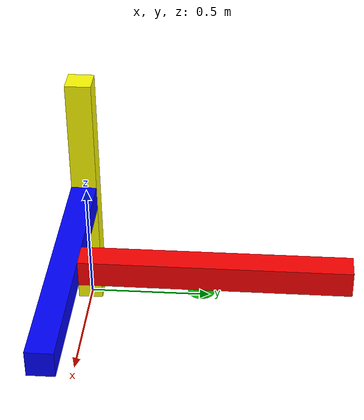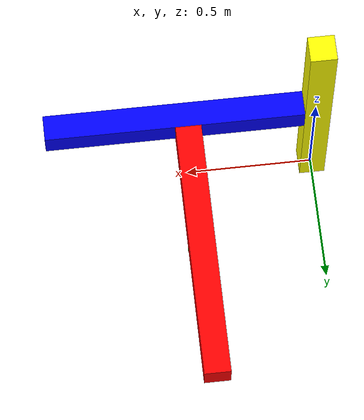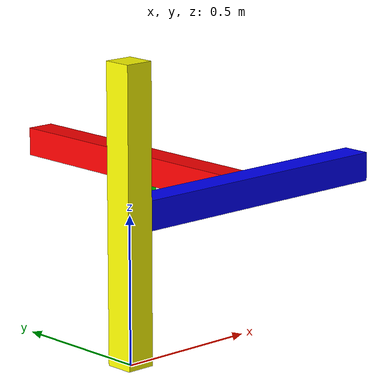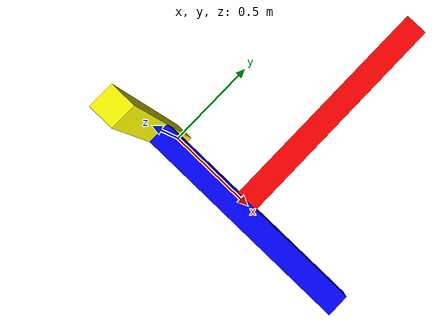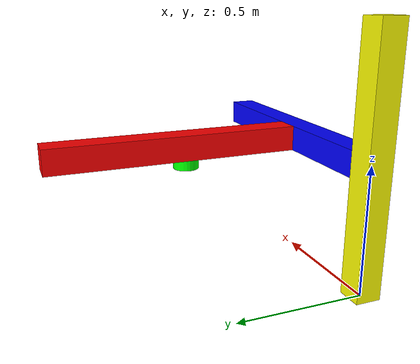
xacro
<?xml version='1.0'?>

<robot name="tryrobot" xmlns:xacro="http://www.ros.org/wiki/xacro">

  <xacro:include filename="$(find trybot_description)/urdf/trybot.gazebo" />

  <!-- ******************* WORLD LINK ******************* -->
  <link name="world" />

  <!-- ********************* AXIS-1 ********************* -->
  <link name="axis1">
  	<visual>
	  <origin xyz="0 0 0.5" rpy="0 0 0" />
  	  <geometry>
        <box size="0.1 0.1 1.0"/>
  	  </geometry>
			<material name="yellow">
  		<color rgba="1 1 0 1" />
  	  </material>
  	</visual>

	<inertial>
	  <mass value="0.1405"/>
	  <inertia
		  ixx="0.011825416666666668" ixy="0.0" ixz="0.0"
		  iyy="0.00023416666666666673" iyz="0.0"
		  izz="0.011825416666666668"/>
	</inertial>

	<collision>
	  <origin xyz="0 0 0.5" rpy="0 0 0" />
	  <geometry>
      <box size="0.1 0.1 1.0"/>
	  </geometry>
	</collision>
  </link>

  <!-- ********************* AXIS-2 ********************* -->
  <link name="axis2">
  	<visual>
	  <origin xyz="-0.5 0 0.05" rpy="0 0 0" />
  	  <geometry>
        <box size="0.1 0.1 1.0"/>
  	  </geometry>
  	  <material name="blue">
  		<color rgba="0 0 1 1" />
  	  </material>
  	</visual>

	<inertial>
	  <mass value="0.1405"/>
	  <inertia
		  ixx="0.011825416666666668" ixy="0.0" ixz="0.0"
		  iyy="0.00023416666666666673" iyz="0.0"
		  izz="0.011825416666666668"/>
	</inertial>

	<collision>
	  <origin xyz="-0.5 0 0.06" rpy="0 0 0" />
	  <geometry>
      <box size="0.1 0.1 1.0"/>
	  </geometry>
	</collision>
  </link>

  <!-- ********************* AXIS-3 ********************* -->
  <link name="axis3">
  	<visual>
	  <origin xyz="-0.5 0 -0.05" rpy="0 0 0" />
  	  <geometry>
        <box size="0.1 0.1 1.0"/>
  	  </geometry>
  	  <material name="red">
  		<color rgba="1 0 0 1" />
  	  </material>
  	</visual>

	<inertial>
	  <mass value="0.1405"/>
	  <inertia
		  ixx="0.011825416666666668" ixy="0.0" ixz="0.0"
		  iyy="0.00023416666666666673" iyz="0.0"
		  izz="0.011825416666666668"/>
	</inertial>

	<collision>
	  <origin xyz="-0.5 0 -0.06" rpy="0 0 0" />
	  <geometry>
      <box size="0.1 0.1 1.0"/>
	  </geometry>
	</collision>
  </link>

 <!-- ********************* FLANGE ********************* -->
  <link name="flange">
  	<visual>
	  <origin xyz="0 0 0.07" rpy="0 0 0" />
  	  <geometry>
        <!--box size="0.1 0.1 0.2"/-->
				<cylinder radius="0.05" length="0.04" />
  	  </geometry>
  	  <material name="green">
  		<color rgba="0 1 0 1" />
  	  </material>
  	</visual>

	<inertial>
	  <mass value="0.028100"/>
	  <inertia
		  ixx="0.00011708" ixy="0.0" ixz="0.0"
		  iyy="0.000046833" iyz="0.0"
		  izz="0.00011708"/>
	</inertial>

	<collision>
	  <origin xyz="0 0 0.07" rpy="0 0 0" />
  	  <geometry>
        <!--box size="0.1 0.1 0.2"/-->
				<cylinder radius="0.05" length="0.04" />
  	  </geometry>
	</collision>
  </link>

  <!-- ********************* JOINTS ********************* -->

  <joint name="world_joint"  type="fixed">
  	<origin xyz="0 0 0" rpy="0 0 0" />
    <parent link="world"/>
    <child link="axis1"/>
  </joint>

  <joint name="joint1" type="prismatic">
    <limit lower="-0.45" upper="0.45" effort="12" velocity="2.443"/>
  	<parent link="axis1" />
  	<child link="axis2" />
    <origin xyz="0.5 0 0" rpy="0 1.570796 0"/>
    <axis xyz="-1 0 0" />
  </joint>

	<joint name="joint2" type="prismatic">
    <limit lower="-0.4" upper="0.5" effort="12" velocity="2.443"/>
  	<parent link="axis2" />
  	<child link="axis3" />
    <origin xyz="0 0.5 0.0" rpy="1.570796 0 0"/>
    <axis xyz="0 1 0" />
  </joint>

	<joint name="joint3" type="prismatic">
    <limit lower="-0.4" upper="0.5" effort="12" velocity="2.443"/>
  	<parent link="axis3" />
  	<child link="flange" />
    <origin xyz="-0.5 0 0" rpy="0 1.570796 0"/>
    <axis xyz="1 0 0" />
  </joint>

  <!-- ************* ACTUATOR TRANSMISSIONS ************* -->

	<transmission name="joint1_trans">
		<type>transmission_interface/SimpleTransmission</type>
		<joint name="joint1">
			<hardwareInterface>hardware_interface/EffortJointInterface</hardwareInterface>
		</joint>
		<actuator name="joint1_motor">
			<mechanicalReduction>50</mechanicalReduction>
		</actuator>
	</transmission>

  <transmission name="joint2_trans">
    <type>transmission_interface/SimpleTransmission</type>
    <joint name="joint2">
      <hardwareInterface>hardware_interface/EffortJointInterface</hardwareInterface>
    </joint>
    <actuator name="joint2_motor">
      <mechanicalReduction>50</mechanicalReduction>
    </actuator>
  </transmission>

  <transmission name="joint3_trans">
    <type>transmission_interface/SimpleTransmission</type>
    <joint name="joint3">
      <hardwareInterface>hardware_interface/EffortJointInterface</hardwareInterface>
    </joint>
    <actuator name="joint3_motor">
      <mechanicalReduction>50</mechanicalReduction>
    </actuator>
  </transmission>

  <!-- ********************* GAZEBO ********************* -->

</robot>
